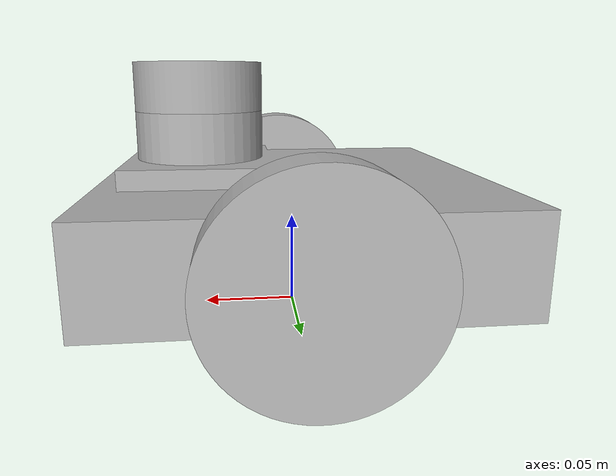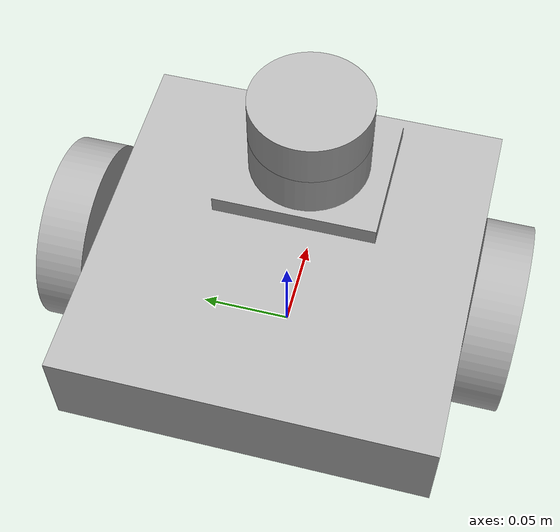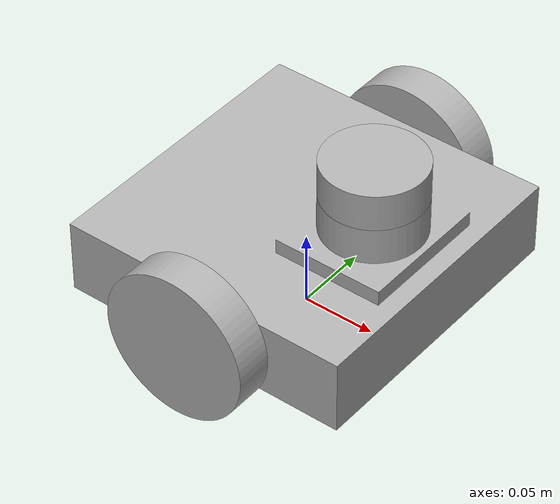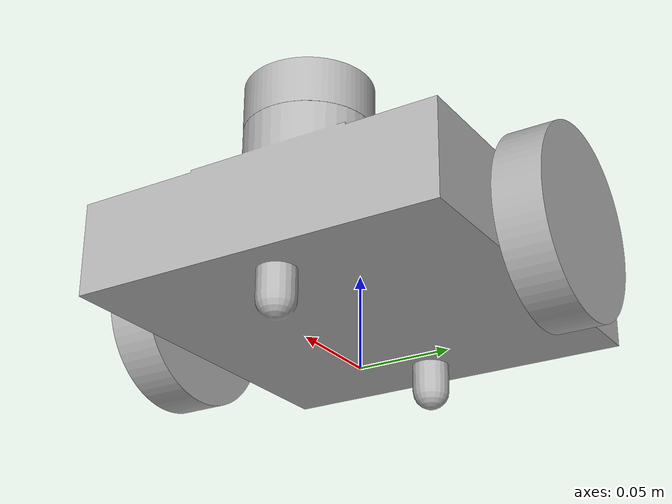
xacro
<?xml version="1.0" ?>
<robot name="Diff_robot" xmlns:xacro="http://www.ros.org/wiki/xacro">

<xacro:include filename="$(find Diff_robot_description)/urdf/materials.xacro" />
<xacro:include filename="$(find Diff_robot_description)/urdf/Diff_robot.trans" />
<xacro:include filename="$(find Diff_robot_description)/urdf/Diff_robot.gazebo" />
<link name="base_link">
  <inertial>
    <origin xyz="0.003594340276693269 -2.035670386573577e-07 0.05264230632550695" rpy="0 0 0"/>
    <mass value="2.2996391132406355"/>
    <inertia ixx="0.007868" iyy="0.008317" izz="0.014732" ixy="-0.0" iyz="-0.0" ixz="-0.000308"/>
  </inertial>
  <visual>
    <origin xyz="0 0 0" rpy="0 0 0"/>
    <geometry>
      <mesh filename="package://Diff_robot_description/meshes/base_link.stl" scale="0.001 0.001 0.001"/>
    </geometry>
    <material name="silver"/>
  </visual>
  <collision>
    <origin xyz="0 0 0" rpy="0 0 0"/>
    <geometry>
      <mesh filename="package://Diff_robot_description/meshes/base_link.stl" scale="0.001 0.001 0.001"/>
    </geometry>
  </collision>
</link>

<link name="right_wheel_1">
  <inertial>
    <origin xyz="-5.790023100122029e-18 -0.012499999999999997 0.0" rpy="0 0 0"/>
    <mass value="0.1826050729899067"/>
    <inertia ixx="0.000124" iyy="0.000228" izz="0.000124" ixy="-0.0" iyz="0.0" ixz="0.0"/>
  </inertial>
  <visual>
    <origin xyz="-0.0 0.1 -0.05" rpy="0 0 0"/>
    <geometry>
      <mesh filename="package://Diff_robot_description/meshes/right_wheel_1.stl" scale="0.001 0.001 0.001"/>
    </geometry>
    <material name="silver"/>
  </visual>
  <collision>
    <origin xyz="-0.0 0.1 -0.05" rpy="0 0 0"/>
    <geometry>
      <mesh filename="package://Diff_robot_description/meshes/right_wheel_1.stl" scale="0.001 0.001 0.001"/>
    </geometry>
  </collision>
</link>

<link name="left_wheel_1">
  <inertial>
    <origin xyz="-5.790023100122029e-18 0.012499999999999997 0.0" rpy="0 0 0"/>
    <mass value="0.1826050729899067"/>
    <inertia ixx="0.000124" iyy="0.000228" izz="0.000124" ixy="0.0" iyz="-0.0" ixz="0.0"/>
  </inertial>
  <visual>
    <origin xyz="-0.0 -0.1 -0.05" rpy="0 0 0"/>
    <geometry>
      <mesh filename="package://Diff_robot_description/meshes/left_wheel_1.stl" scale="0.001 0.001 0.001"/>
    </geometry>
    <material name="silver"/>
  </visual>
  <collision>
    <origin xyz="-0.0 -0.1 -0.05" rpy="0 0 0"/>
    <geometry>
      <mesh filename="package://Diff_robot_description/meshes/left_wheel_1.stl" scale="0.001 0.001 0.001"/>
    </geometry>
  </collision>
</link>

<link name="lidar_1">
  <inertial>
    <origin xyz="0.0 6.433359000135586e-18 0.012499999999999997" rpy="0 0 0"/>
    <mass value="0.14366895903947824"/>
    <inertia ixx="4.8e-05" iyy="4.8e-05" izz="8.1e-05" ixy="0.0" iyz="0.0" ixz="0.0"/>
  </inertial>
  <visual>
    <origin xyz="-0.05 -0.0 -0.11" rpy="0 0 0"/>
    <geometry>
      <mesh filename="package://Diff_robot_description/meshes/lidar_1.stl" scale="0.001 0.001 0.001"/>
    </geometry>
    <material name="silver"/>
  </visual>
  <collision>
    <origin xyz="-0.05 -0.0 -0.11" rpy="0 0 0"/>
    <geometry>
      <mesh filename="package://Diff_robot_description/meshes/lidar_1.stl" scale="0.001 0.001 0.001"/>
    </geometry>
  </collision>
</link>

<joint name="Revolución1" type="continuous">
  <origin xyz="0.0 -0.1 0.05" rpy="0 0 0"/>
  <parent link="base_link"/>
  <child link="right_wheel_1"/>
  <axis xyz="0.0 -1.0 0.0"/>
</joint>

<joint name="Revolución2" type="continuous">
  <origin xyz="0.0 0.1 0.05" rpy="0 0 0"/>
  <parent link="base_link"/>
  <child link="left_wheel_1"/>
  <axis xyz="0.0 1.0 0.0"/>
</joint>

<joint name="Rígida3" type="fixed">
  <origin xyz="0.05 0.0 0.11" rpy="0 0 0"/>
  <parent link="base_link"/>
  <child link="lidar_1"/>
</joint>

</robot>

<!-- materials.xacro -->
<robot name="Diff_robot" xmlns:xacro="http://www.ros.org/wiki/xacro" >

<material name="silver">
  <color rgba="0.700 0.700 0.700 1.000"/>
</material>

</robot>

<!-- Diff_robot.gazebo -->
<robot name="Diff_robot" xmlns:xacro="http://www.ros.org/wiki/xacro" >

<xacro:property name="body_color" value="Gazebo/Silver" />

<gazebo>
  <plugin name="control" filename="libgazebo_ros_control.so"/>
</gazebo>
<gazebo reference="base_link">
  <material>${body_color}</material>
  <mu1>0.2</mu1>
  <mu2>0.2</mu2>
  <selfCollide>true</selfCollide>
  <gravity>true</gravity>
</gazebo>

<gazebo reference="right_wheel_1">
  <material>${body_color}</material>
  <mu1>0.2</mu1>
  <mu2>0.2</mu2>
  <selfCollide>true</selfCollide>
</gazebo>

<gazebo reference="left_wheel_1">
  <material>${body_color}</material>
  <mu1>0.2</mu1>
  <mu2>0.2</mu2>
  <selfCollide>true</selfCollide>
</gazebo>

<gazebo reference="lidar_1">
  <material>${body_color}</material>
  <mu1>0.2</mu1>
  <mu2>0.2</mu2>
  <selfCollide>true</selfCollide>
</gazebo>

</robot>
